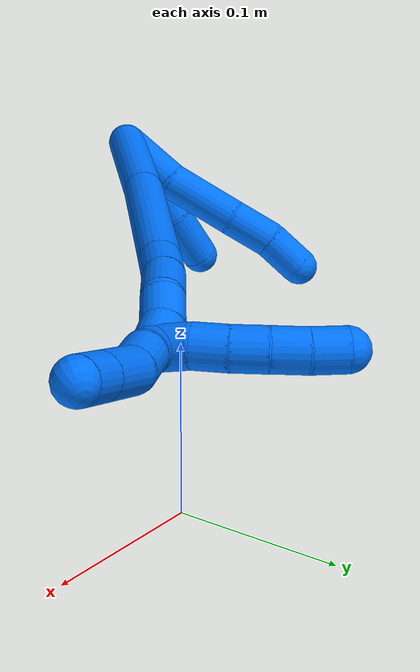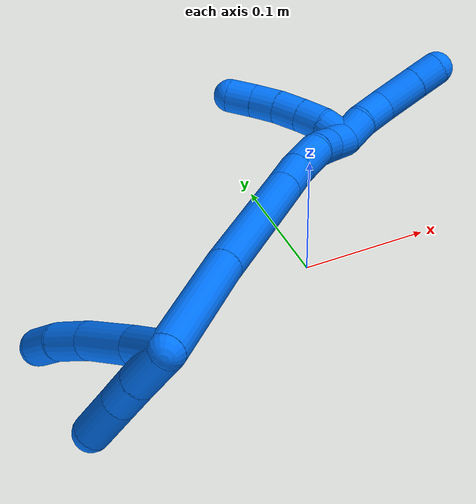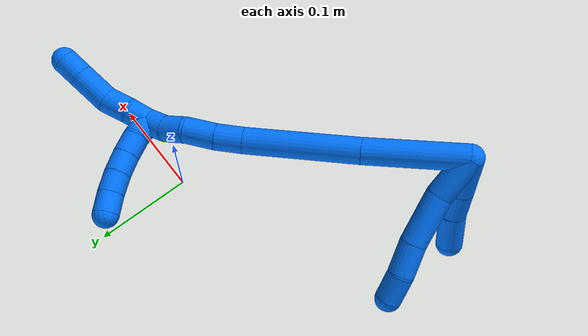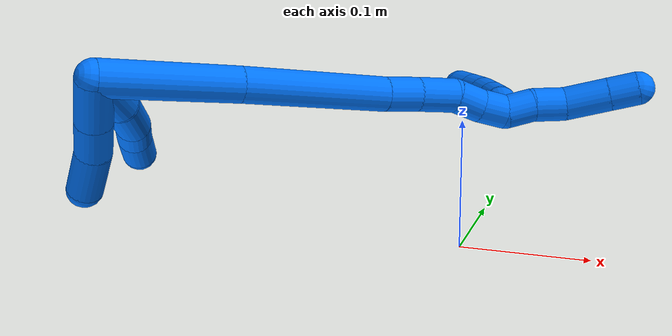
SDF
<sdf version="1.7">
 <world name="default">
  <model name="14">
   <static>0</static>
   <link name="14">
    <collision name="collision-cylinder-e_1_2_8">
     <pose>-0.011126 -0.008446 -0.016253 2.66234 -0.545861 -1.70639</pose>
     <geometry><cylinder><radius>0.0125</radius><length>0.042863</length></cylinder></geometry>
     <surface>
      <friction><ode><mu>1.16</mu><mu2>1.16</mu2><slip1>0</slip1><slip2>0</slip2></ode></friction>
      <contact><ode><kp>1e+06</kp><kd>1</kd><max_vel>0</max_vel><min_depth>0.001</min_depth></ode></contact>
     </surface>
    </collision>
    <visual name="visual-cylinder-e_1_2_8">
     <pose>-0.011126 -0.008446 -0.016253 2.66234 -0.545861 -1.70639</pose>
     <geometry><cylinder><radius>0.0125</radius><length>0.042863</length></cylinder></geometry>
     <material><ambient>0 0.462745 1 1</ambient></material>
    </visual>
    <collision name="collision-cylinder-e_2_8_9">
     <pose>-0.039224 -0.02555 -0.047873 2.62851 -0.766173 -1.98753</pose>
     <geometry><cylinder><radius>0.0125</radius><length>0.048954</length></cylinder></geometry>
     <surface>
      <friction><ode><mu>1.16</mu><mu2>1.16</mu2><slip1>0</slip1><slip2>0</slip2></ode></friction>
      <contact><ode><kp>1e+06</kp><kd>1</kd><max_vel>0</max_vel><min_depth>0.001</min_depth></ode></contact>
     </surface>
    </collision>
    <visual name="visual-cylinder-e_2_8_9">
     <pose>-0.039224 -0.02555 -0.047873 2.62851 -0.766173 -1.98753</pose>
     <geometry><cylinder><radius>0.0125</radius><length>0.048954</length></cylinder></geometry>
     <material><ambient>0 0.462745 1 1</ambient></material>
    </visual>
    <collision name="collision-cylinder-e_3_9_10">
     <pose>-0.067607 -0.040494 -0.071392 2.48479 -0.836755 -1.83383</pose>
     <geometry><cylinder><radius>0.0125</radius><length>0.030736</length></cylinder></geometry>
     <surface>
      <friction><ode><mu>1.16</mu><mu2>1.16</mu2><slip1>0</slip1><slip2>0</slip2></ode></friction>
      <contact><ode><kp>1e+06</kp><kd>1</kd><max_vel>0</max_vel><min_depth>0.001</min_depth></ode></contact>
     </surface>
    </collision>
    <visual name="visual-cylinder-e_3_9_10">
     <pose>-0.067607 -0.040494 -0.071392 2.48479 -0.836755 -1.83383</pose>
     <geometry><cylinder><radius>0.0125</radius><length>0.030736</length></cylinder></geometry>
     <material><ambient>0 0.462745 1 1</ambient></material>
    </visual>
    <collision name="collision-cylinder-e_4_10_6">
     <pose>-0.087176 -0.054229 -0.087685 2.40042 -0.636679 -1.40687</pose>
     <geometry><cylinder><radius>0.0125</radius><length>0.027447</length></cylinder></geometry>
     <surface>
      <friction><ode><mu>1.16</mu><mu2>1.16</mu2><slip1>0</slip1><slip2>0</slip2></ode></friction>
      <contact><ode><kp>1e+06</kp><kd>1</kd><max_vel>0</max_vel><min_depth>0.001</min_depth></ode></contact>
     </surface>
    </collision>
    <visual name="visual-cylinder-e_4_10_6">
     <pose>-0.087176 -0.054229 -0.087685 2.40042 -0.636679 -1.40687</pose>
     <geometry><cylinder><radius>0.0125</radius><length>0.027447</length></cylinder></geometry>
     <material><ambient>0 0.462745 1 1</ambient></material>
    </visual>
    <collision name="collision-cylinder-e_1_2_11">
     <pose>-0.008462 -0.014847 -0.007198 2.02223 -0.473855 -0.735736</pose>
     <geometry><cylinder><radius>0.0125</radius><length>0.037086</length></cylinder></geometry>
     <surface>
      <friction><ode><mu>1.16</mu><mu2>1.16</mu2><slip1>0</slip1><slip2>0</slip2></ode></friction>
      <contact><ode><kp>1e+06</kp><kd>1</kd><max_vel>0</max_vel><min_depth>0.001</min_depth></ode></contact>
     </surface>
    </collision>
    <visual name="visual-cylinder-e_1_2_11">
     <pose>-0.008462 -0.014847 -0.007198 2.02223 -0.473855 -0.735736</pose>
     <geometry><cylinder><radius>0.0125</radius><length>0.037086</length></cylinder></geometry>
     <material><ambient>0 0.462745 1 1</ambient></material>
    </visual>
    <collision name="collision-cylinder-e_2_11_12">
     <pose>-0.022848 -0.040576 -0.019612 2.01778 -0.456402 -0.706779</pose>
     <geometry><cylinder><radius>0.0125</radius><length>0.026887</length></cylinder></geometry>
     <surface>
      <friction><ode><mu>1.16</mu><mu2>1.16</mu2><slip1>0</slip1><slip2>0</slip2></ode></friction>
      <contact><ode><kp>1e+06</kp><kd>1</kd><max_vel>0</max_vel><min_depth>0.001</min_depth></ode></contact>
     </surface>
    </collision>
    <visual name="visual-cylinder-e_2_11_12">
     <pose>-0.022848 -0.040576 -0.019612 2.01778 -0.456402 -0.706779</pose>
     <geometry><cylinder><radius>0.0125</radius><length>0.026887</length></cylinder></geometry>
     <material><ambient>0 0.462745 1 1</ambient></material>
    </visual>
    <collision name="collision-cylinder-e_3_12_5">
     <pose>-0.037614 -0.066501 -0.029304 1.85997 -0.513026 -0.676357</pose>
     <geometry><cylinder><radius>0.0125</radius><length>0.036027</length></cylinder></geometry>
     <surface>
      <friction><ode><mu>1.16</mu><mu2>1.16</mu2><slip1>0</slip1><slip2>0</slip2></ode></friction>
      <contact><ode><kp>1e+06</kp><kd>1</kd><max_vel>0</max_vel><min_depth>0.001</min_depth></ode></contact>
     </surface>
    </collision>
    <visual name="visual-cylinder-e_3_12_5">
     <pose>-0.037614 -0.066501 -0.029304 1.85997 -0.513026 -0.676357</pose>
     <geometry><cylinder><radius>0.0125</radius><length>0.036027</length></cylinder></geometry>
     <material><ambient>0 0.462745 1 1</ambient></material>
    </visual>
    <collision name="collision-cylinder-e_1_2_13">
     <pose>0.00997 0.007494 -0.045595 -2.97869 0.212518 -1.83509</pose>
     <geometry><cylinder><radius>0.0125</radius><length>0.094541</length></cylinder></geometry>
     <surface>
      <friction><ode><mu>1.16</mu><mu2>1.16</mu2><slip1>0</slip1><slip2>0</slip2></ode></friction>
      <contact><ode><kp>1e+06</kp><kd>1</kd><max_vel>0</max_vel><min_depth>0.001</min_depth></ode></contact>
     </surface>
    </collision>
    <visual name="visual-cylinder-e_1_2_13">
     <pose>0.00997 0.007494 -0.045595 -2.97869 0.212518 -1.83509</pose>
     <geometry><cylinder><radius>0.0125</radius><length>0.094541</length></cylinder></geometry>
     <material><ambient>0 0.462745 1 1</ambient></material>
    </visual>
    <collision name="collision-cylinder-e_2_13_14">
     <pose>0.033084 0.0227 -0.142536 -2.99252 0.247921 -2.06173</pose>
     <geometry><cylinder><radius>0.0125</radius><length>0.107118</length></cylinder></geometry>
     <surface>
      <friction><ode><mu>1.16</mu><mu2>1.16</mu2><slip1>0</slip1><slip2>0</slip2></ode></friction>
      <contact><ode><kp>1e+06</kp><kd>1</kd><max_vel>0</max_vel><min_depth>0.001</min_depth></ode></contact>
     </surface>
    </collision>
    <visual name="visual-cylinder-e_2_13_14">
     <pose>0.033084 0.0227 -0.142536 -2.99252 0.247921 -2.06173</pose>
     <geometry><cylinder><radius>0.0125</radius><length>0.107118</length></cylinder></geometry>
     <material><ambient>0 0.462745 1 1</ambient></material>
    </visual>
    <collision name="collision-cylinder-e_3_14_15">
     <pose>0.049653 0.033054 -0.206214 -2.93051 0.265292 -1.79951</pose>
     <geometry><cylinder><radius>0.0125</radius><length>0.026139</length></cylinder></geometry>
     <surface>
      <friction><ode><mu>1.16</mu><mu2>1.16</mu2><slip1>0</slip1><slip2>0</slip2></ode></friction>
      <contact><ode><kp>1e+06</kp><kd>1</kd><max_vel>0</max_vel><min_depth>0.001</min_depth></ode></contact>
     </surface>
    </collision>
    <visual name="visual-cylinder-e_3_14_15">
     <pose>0.049653 0.033054 -0.206214 -2.93051 0.265292 -1.79951</pose>
     <geometry><cylinder><radius>0.0125</radius><length>0.026139</length></cylinder></geometry>
     <material><ambient>0 0.462745 1 1</ambient></material>
    </visual>
    <collision name="collision-cylinder-e_4_15_16">
     <pose>0.058382 0.038506 -0.232121 -2.9375 0.365322 -2.12923</pose>
     <geometry><cylinder><radius>0.0125</radius><length>0.029685</length></cylinder></geometry>
     <surface>
      <friction><ode><mu>1.16</mu><mu2>1.16</mu2><slip1>0</slip1><slip2>0</slip2></ode></friction>
      <contact><ode><kp>1e+06</kp><kd>1</kd><max_vel>0</max_vel><min_depth>0.001</min_depth></ode></contact>
     </surface>
    </collision>
    <visual name="visual-cylinder-e_4_15_16">
     <pose>0.058382 0.038506 -0.232121 -2.9375 0.365322 -2.12923</pose>
     <geometry><cylinder><radius>0.0125</radius><length>0.029685</length></cylinder></geometry>
     <material><ambient>0 0.462745 1 1</ambient></material>
    </visual>
    <collision name="collision-cylinder-e_5_16_17">
     <pose>0.067413 0.0399 -0.256105 3.00639 0.341065 2.3924</pose>
     <geometry><cylinder><radius>0.0125</radius><length>0.022293</length></cylinder></geometry>
     <surface>
      <friction><ode><mu>1.16</mu><mu2>1.16</mu2><slip1>0</slip1><slip2>0</slip2></ode></friction>
      <contact><ode><kp>1e+06</kp><kd>1</kd><max_vel>0</max_vel><min_depth>0.001</min_depth></ode></contact>
     </surface>
    </collision>
    <visual name="visual-cylinder-e_5_16_17">
     <pose>0.067413 0.0399 -0.256105 3.00639 0.341065 2.3924</pose>
     <geometry><cylinder><radius>0.0125</radius><length>0.022293</length></cylinder></geometry>
     <material><ambient>0 0.462745 1 1</ambient></material>
    </visual>
    <collision name="collision-cylinder-e_6_17_1">
     <pose>0.076692 0.038526 -0.274966 -3.13669 0.581069 -3.1252</pose>
     <geometry><cylinder><radius>0.0125</radius><length>0.020224</length></cylinder></geometry>
     <surface>
      <friction><ode><mu>1.16</mu><mu2>1.16</mu2><slip1>0</slip1><slip2>0</slip2></ode></friction>
      <contact><ode><kp>1e+06</kp><kd>1</kd><max_vel>0</max_vel><min_depth>0.001</min_depth></ode></contact>
     </surface>
    </collision>
    <visual name="visual-cylinder-e_6_17_1">
     <pose>0.076692 0.038526 -0.274966 -3.13669 0.581069 -3.1252</pose>
     <geometry><cylinder><radius>0.0125</radius><length>0.020224</length></cylinder></geometry>
     <material><ambient>0 0.462745 1 1</ambient></material>
    </visual>
    <collision name="collision-cylinder-e_1_1_18">
     <pose>0.087524 0.0436 -0.291078 -2.56023 0.522728 -1.45912</pose>
     <geometry><cylinder><radius>0.0125</radius><length>0.021154</length></cylinder></geometry>
     <surface>
      <friction><ode><mu>1.16</mu><mu2>1.16</mu2><slip1>0</slip1><slip2>0</slip2></ode></friction>
      <contact><ode><kp>1e+06</kp><kd>1</kd><max_vel>0</max_vel><min_depth>0.001</min_depth></ode></contact>
     </surface>
    </collision>
    <visual name="visual-cylinder-e_1_1_18">
     <pose>0.087524 0.0436 -0.291078 -2.56023 0.522728 -1.45912</pose>
     <geometry><cylinder><radius>0.0125</radius><length>0.021154</length></cylinder></geometry>
     <material><ambient>0 0.462745 1 1</ambient></material>
    </visual>
    <collision name="collision-cylinder-e_2_18_19">
     <pose>0.099328 0.051899 -0.308311 -2.81278 0.572768 -2.11549</pose>
     <geometry><cylinder><radius>0.0125</radius><length>0.024074</length></cylinder></geometry>
     <surface>
      <friction><ode><mu>1.16</mu><mu2>1.16</mu2><slip1>0</slip1><slip2>0</slip2></ode></friction>
      <contact><ode><kp>1e+06</kp><kd>1</kd><max_vel>0</max_vel><min_depth>0.001</min_depth></ode></contact>
     </surface>
    </collision>
    <visual name="visual-cylinder-e_2_18_19">
     <pose>0.099328 0.051899 -0.308311 -2.81278 0.572768 -2.11549</pose>
     <geometry><cylinder><radius>0.0125</radius><length>0.024074</length></cylinder></geometry>
     <material><ambient>0 0.462745 1 1</ambient></material>
    </visual>
    <collision name="collision-cylinder-e_3_19_20">
     <pose>0.117215 0.062802 -0.327404 -2.46551 0.749776 -1.68333</pose>
     <geometry><cylinder><radius>0.0125</radius><length>0.033351</length></cylinder></geometry>
     <surface>
      <friction><ode><mu>1.16</mu><mu2>1.16</mu2><slip1>0</slip1><slip2>0</slip2></ode></friction>
      <contact><ode><kp>1e+06</kp><kd>1</kd><max_vel>0</max_vel><min_depth>0.001</min_depth></ode></contact>
     </surface>
    </collision>
    <visual name="visual-cylinder-e_3_19_20">
     <pose>0.117215 0.062802 -0.327404 -2.46551 0.749776 -1.68333</pose>
     <geometry><cylinder><radius>0.0125</radius><length>0.033351</length></cylinder></geometry>
     <material><ambient>0 0.462745 1 1</ambient></material>
    </visual>
    <collision name="collision-cylinder-e_4_20_4">
     <pose>0.135924 0.075327 -0.342995 -2.46374 0.755711 -1.68915</pose>
     <geometry><cylinder><radius>0.0125</radius><length>0.021421</length></cylinder></geometry>
     <surface>
      <friction><ode><mu>1.16</mu><mu2>1.16</mu2><slip1>0</slip1><slip2>0</slip2></ode></friction>
      <contact><ode><kp>1e+06</kp><kd>1</kd><max_vel>0</max_vel><min_depth>0.001</min_depth></ode></contact>
     </surface>
    </collision>
    <visual name="visual-cylinder-e_4_20_4">
     <pose>0.135924 0.075327 -0.342995 -2.46374 0.755711 -1.68915</pose>
     <geometry><cylinder><radius>0.0125</radius><length>0.021421</length></cylinder></geometry>
     <material><ambient>0 0.462745 1 1</ambient></material>
    </visual>
    <collision name="collision-cylinder-e_1_1_21">
     <pose>0.074141 0.041336 -0.288585 -2.64956 -0.944406 2.22772</pose>
     <geometry><cylinder><radius>0.0125</radius><length>0.02</length></cylinder></geometry>
     <surface>
      <friction><ode><mu>1.16</mu><mu2>1.16</mu2><slip1>0</slip1><slip2>0</slip2></ode></friction>
      <contact><ode><kp>1e+06</kp><kd>1</kd><max_vel>0</max_vel><min_depth>0.001</min_depth></ode></contact>
     </surface>
    </collision>
    <visual name="visual-cylinder-e_1_1_21">
     <pose>0.074141 0.041336 -0.288585 -2.64956 -0.944406 2.22772</pose>
     <geometry><cylinder><radius>0.0125</radius><length>0.02</length></cylinder></geometry>
     <material><ambient>0 0.462745 1 1</ambient></material>
    </visual>
    <collision name="collision-cylinder-e_2_21_22">
     <pose>0.057388 0.044843 -0.298711 -2.99396 -1.04562 2.88635</pose>
     <geometry><cylinder><radius>0.0125</radius><length>0.02</length></cylinder></geometry>
     <surface>
      <friction><ode><mu>1.16</mu><mu2>1.16</mu2><slip1>0</slip1><slip2>0</slip2></ode></friction>
      <contact><ode><kp>1e+06</kp><kd>1</kd><max_vel>0</max_vel><min_depth>0.001</min_depth></ode></contact>
     </surface>
    </collision>
    <visual name="visual-cylinder-e_2_21_22">
     <pose>0.057388 0.044843 -0.298711 -2.99396 -1.04562 2.88635</pose>
     <geometry><cylinder><radius>0.0125</radius><length>0.02</length></cylinder></geometry>
     <material><ambient>0 0.462745 1 1</ambient></material>
    </visual>
    <collision name="collision-cylinder-e_3_22_23">
     <pose>0.03969 0.046263 -0.307879 -2.98094 -1.13032 2.88906</pose>
     <geometry><cylinder><radius>0.0125</radius><length>0.02</length></cylinder></geometry>
     <surface>
      <friction><ode><mu>1.16</mu><mu2>1.16</mu2><slip1>0</slip1><slip2>0</slip2></ode></friction>
      <contact><ode><kp>1e+06</kp><kd>1</kd><max_vel>0</max_vel><min_depth>0.001</min_depth></ode></contact>
     </surface>
    </collision>
    <visual name="visual-cylinder-e_3_22_23">
     <pose>0.03969 0.046263 -0.307879 -2.98094 -1.13032 2.88906</pose>
     <geometry><cylinder><radius>0.0125</radius><length>0.02</length></cylinder></geometry>
     <material><ambient>0 0.462745 1 1</ambient></material>
    </visual>
    <collision name="collision-cylinder-e_4_23_24">
     <pose>0.021273 0.047006 -0.315578 -3.12411 -1.21427 3.11643</pose>
     <geometry><cylinder><radius>0.0125</radius><length>0.02</length></cylinder></geometry>
     <surface>
      <friction><ode><mu>1.16</mu><mu2>1.16</mu2><slip1>0</slip1><slip2>0</slip2></ode></friction>
      <contact><ode><kp>1e+06</kp><kd>1</kd><max_vel>0</max_vel><min_depth>0.001</min_depth></ode></contact>
     </surface>
    </collision>
    <visual name="visual-cylinder-e_4_23_24">
     <pose>0.021273 0.047006 -0.315578 -3.12411 -1.21427 3.11643</pose>
     <geometry><cylinder><radius>0.0125</radius><length>0.02</length></cylinder></geometry>
     <material><ambient>0 0.462745 1 1</ambient></material>
    </visual>
    <collision name="collision-cylinder-e_5_24_3">
     <pose>0.002229 0.047137 -0.321603 -3.11382 -1.31433 3.1056</pose>
     <geometry><cylinder><radius>0.0125</radius><length>0.02</length></cylinder></geometry>
     <surface>
      <friction><ode><mu>1.16</mu><mu2>1.16</mu2><slip1>0</slip1><slip2>0</slip2></ode></friction>
      <contact><ode><kp>1e+06</kp><kd>1</kd><max_vel>0</max_vel><min_depth>0.001</min_depth></ode></contact>
     </surface>
    </collision>
    <visual name="visual-cylinder-e_5_24_3">
     <pose>0.002229 0.047137 -0.321603 -3.11382 -1.31433 3.1056</pose>
     <geometry><cylinder><radius>0.0125</radius><length>0.02</length></cylinder></geometry>
     <material><ambient>0 0.462745 1 1</ambient></material>
    </visual>
    <collision name="collision-sphere-3">
     <pose>-0.007444 0.047208 -0.324139 0 -0 0</pose>
     <geometry><sphere><radius>0.0125</radius></sphere></geometry>
     <surface>
      <friction><ode><mu>1.16</mu><mu2>1.16</mu2><slip1>0</slip1><slip2>0</slip2></ode></friction>
      <contact><ode><kp>1e+06</kp><kd>1</kd><max_vel>0</max_vel><min_depth>0.001</min_depth></ode></contact>
     </surface>
    </collision>
    <visual name="visual-sphere-3">
     <pose>-0.007444 0.047208 -0.324139 0 -0 0</pose>
     <geometry><sphere><radius>0.0125</radius></sphere></geometry>
     <material><ambient>0 0.462745 1 1</ambient></material>
    </visual>
    <collision name="collision-sphere-24">
     <pose>0.011902 0.047067 -0.319067 0 -0 0</pose>
     <geometry><sphere><radius>0.0125</radius></sphere></geometry>
     <surface>
      <friction><ode><mu>1.16</mu><mu2>1.16</mu2><slip1>0</slip1><slip2>0</slip2></ode></friction>
      <contact><ode><kp>1e+06</kp><kd>1</kd><max_vel>0</max_vel><min_depth>0.001</min_depth></ode></contact>
     </surface>
    </collision>
    <visual name="visual-sphere-24">
     <pose>0.011902 0.047067 -0.319067 0 -0 0</pose>
     <geometry><sphere><radius>0.0125</radius></sphere></geometry>
     <material><ambient>0 0.462745 1 1</ambient></material>
    </visual>
    <collision name="collision-sphere-23">
     <pose>0.030644 0.046945 -0.312088 0 -0 0</pose>
     <geometry><sphere><radius>0.0125</radius></sphere></geometry>
     <surface>
      <friction><ode><mu>1.16</mu><mu2>1.16</mu2><slip1>0</slip1><slip2>0</slip2></ode></friction>
      <contact><ode><kp>1e+06</kp><kd>1</kd><max_vel>0</max_vel><min_depth>0.001</min_depth></ode></contact>
     </surface>
    </collision>
    <visual name="visual-sphere-23">
     <pose>0.030644 0.046945 -0.312088 0 -0 0</pose>
     <geometry><sphere><radius>0.0125</radius></sphere></geometry>
     <material><ambient>0 0.462745 1 1</ambient></material>
    </visual>
    <collision name="collision-sphere-22">
     <pose>0.048735 0.045581 -0.30367 0 -0 0</pose>
     <geometry><sphere><radius>0.0125</radius></sphere></geometry>
     <surface>
      <friction><ode><mu>1.16</mu><mu2>1.16</mu2><slip1>0</slip1><slip2>0</slip2></ode></friction>
      <contact><ode><kp>1e+06</kp><kd>1</kd><max_vel>0</max_vel><min_depth>0.001</min_depth></ode></contact>
     </surface>
    </collision>
    <visual name="visual-sphere-22">
     <pose>0.048735 0.045581 -0.30367 0 -0 0</pose>
     <geometry><sphere><radius>0.0125</radius></sphere></geometry>
     <material><ambient>0 0.462745 1 1</ambient></material>
    </visual>
    <collision name="collision-sphere-21">
     <pose>0.06604 0.044106 -0.293752 0 -0 0</pose>
     <geometry><sphere><radius>0.0125</radius></sphere></geometry>
     <surface>
      <friction><ode><mu>1.16</mu><mu2>1.16</mu2><slip1>0</slip1><slip2>0</slip2></ode></friction>
      <contact><ode><kp>1e+06</kp><kd>1</kd><max_vel>0</max_vel><min_depth>0.001</min_depth></ode></contact>
     </surface>
    </collision>
    <visual name="visual-sphere-21">
     <pose>0.06604 0.044106 -0.293752 0 -0 0</pose>
     <geometry><sphere><radius>0.0125</radius></sphere></geometry>
     <material><ambient>0 0.462745 1 1</ambient></material>
    </visual>
    <collision name="collision-sphere-4">
     <pose>0.14327 0.080215 -0.349067 0 -0 0</pose>
     <geometry><sphere><radius>0.0125</radius></sphere></geometry>
     <surface>
      <friction><ode><mu>1.16</mu><mu2>1.16</mu2><slip1>0</slip1><slip2>0</slip2></ode></friction>
      <contact><ode><kp>1e+06</kp><kd>1</kd><max_vel>0</max_vel><min_depth>0.001</min_depth></ode></contact>
     </surface>
    </collision>
    <visual name="visual-sphere-4">
     <pose>0.14327 0.080215 -0.349067 0 -0 0</pose>
     <geometry><sphere><radius>0.0125</radius></sphere></geometry>
     <material><ambient>0 0.462745 1 1</ambient></material>
    </visual>
    <collision name="collision-sphere-20">
     <pose>0.128579 0.070439 -0.336924 0 -0 0</pose>
     <geometry><sphere><radius>0.0125</radius></sphere></geometry>
     <surface>
      <friction><ode><mu>1.16</mu><mu2>1.16</mu2><slip1>0</slip1><slip2>0</slip2></ode></friction>
      <contact><ode><kp>1e+06</kp><kd>1</kd><max_vel>0</max_vel><min_depth>0.001</min_depth></ode></contact>
     </surface>
    </collision>
    <visual name="visual-sphere-20">
     <pose>0.128579 0.070439 -0.336924 0 -0 0</pose>
     <geometry><sphere><radius>0.0125</radius></sphere></geometry>
     <material><ambient>0 0.462745 1 1</ambient></material>
    </visual>
    <collision name="collision-sphere-11">
     <pose>-0.016923 -0.029694 -0.014396 0 -0 0</pose>
     <geometry><sphere><radius>0.0125</radius></sphere></geometry>
     <surface>
      <friction><ode><mu>1.16</mu><mu2>1.16</mu2><slip1>0</slip1><slip2>0</slip2></ode></friction>
      <contact><ode><kp>1e+06</kp><kd>1</kd><max_vel>0</max_vel><min_depth>0.001</min_depth></ode></contact>
     </surface>
    </collision>
    <visual name="visual-sphere-11">
     <pose>-0.016923 -0.029694 -0.014396 0 -0 0</pose>
     <geometry><sphere><radius>0.0125</radius></sphere></geometry>
     <material><ambient>0 0.462745 1 1</ambient></material>
    </visual>
    <collision name="collision-sphere-6">
     <pose>-0.095335 -0.06168 -0.095825 0 -0 0</pose>
     <geometry><sphere><radius>0.0125</radius></sphere></geometry>
     <surface>
      <friction><ode><mu>1.16</mu><mu2>1.16</mu2><slip1>0</slip1><slip2>0</slip2></ode></friction>
      <contact><ode><kp>1e+06</kp><kd>1</kd><max_vel>0</max_vel><min_depth>0.001</min_depth></ode></contact>
     </surface>
    </collision>
    <visual name="visual-sphere-6">
     <pose>-0.095335 -0.06168 -0.095825 0 -0 0</pose>
     <geometry><sphere><radius>0.0125</radius></sphere></geometry>
     <material><ambient>0 0.462745 1 1</ambient></material>
    </visual>
    <collision name="collision-sphere-10">
     <pose>-0.079017 -0.046779 -0.079545 0 -0 0</pose>
     <geometry><sphere><radius>0.0125</radius></sphere></geometry>
     <surface>
      <friction><ode><mu>1.16</mu><mu2>1.16</mu2><slip1>0</slip1><slip2>0</slip2></ode></friction>
      <contact><ode><kp>1e+06</kp><kd>1</kd><max_vel>0</max_vel><min_depth>0.001</min_depth></ode></contact>
     </surface>
    </collision>
    <visual name="visual-sphere-10">
     <pose>-0.079017 -0.046779 -0.079545 0 -0 0</pose>
     <geometry><sphere><radius>0.0125</radius></sphere></geometry>
     <material><ambient>0 0.462745 1 1</ambient></material>
    </visual>
    <collision name="collision-sphere-9">
     <pose>-0.056196 -0.034208 -0.063239 0 -0 0</pose>
     <geometry><sphere><radius>0.0125</radius></sphere></geometry>
     <surface>
      <friction><ode><mu>1.16</mu><mu2>1.16</mu2><slip1>0</slip1><slip2>0</slip2></ode></friction>
      <contact><ode><kp>1e+06</kp><kd>1</kd><max_vel>0</max_vel><min_depth>0.001</min_depth></ode></contact>
     </surface>
    </collision>
    <visual name="visual-sphere-9">
     <pose>-0.056196 -0.034208 -0.063239 0 -0 0</pose>
     <geometry><sphere><radius>0.0125</radius></sphere></geometry>
     <material><ambient>0 0.462745 1 1</ambient></material>
    </visual>
    <collision name="collision-sphere-2">
     <geometry><sphere><radius>0.0125</radius></sphere></geometry>
     <surface>
      <friction><ode><mu>1.16</mu><mu2>1.16</mu2><slip1>0</slip1><slip2>0</slip2></ode></friction>
      <contact><ode><kp>1e+06</kp><kd>1</kd><max_vel>0</max_vel><min_depth>0.001</min_depth></ode></contact>
     </surface>
    </collision>
    <visual name="visual-sphere-2">
     <geometry><sphere><radius>0.0125</radius></sphere></geometry>
     <material><ambient>0 0.462745 1 1</ambient></material>
    </visual>
    <collision name="collision-sphere-19">
     <pose>0.105851 0.055166 -0.317885 0 -0 0</pose>
     <geometry><sphere><radius>0.0125</radius></sphere></geometry>
     <surface>
      <friction><ode><mu>1.16</mu><mu2>1.16</mu2><slip1>0</slip1><slip2>0</slip2></ode></friction>
      <contact><ode><kp>1e+06</kp><kd>1</kd><max_vel>0</max_vel><min_depth>0.001</min_depth></ode></contact>
     </surface>
    </collision>
    <visual name="visual-sphere-19">
     <pose>0.105851 0.055166 -0.317885 0 -0 0</pose>
     <geometry><sphere><radius>0.0125</radius></sphere></geometry>
     <material><ambient>0 0.462745 1 1</ambient></material>
    </visual>
    <collision name="collision-sphere-8">
     <pose>-0.022252 -0.016892 -0.032507 0 -0 0</pose>
     <geometry><sphere><radius>0.0125</radius></sphere></geometry>
     <surface>
      <friction><ode><mu>1.16</mu><mu2>1.16</mu2><slip1>0</slip1><slip2>0</slip2></ode></friction>
      <contact><ode><kp>1e+06</kp><kd>1</kd><max_vel>0</max_vel><min_depth>0.001</min_depth></ode></contact>
     </surface>
    </collision>
    <visual name="visual-sphere-8">
     <pose>-0.022252 -0.016892 -0.032507 0 -0 0</pose>
     <geometry><sphere><radius>0.0125</radius></sphere></geometry>
     <material><ambient>0 0.462745 1 1</ambient></material>
    </visual>
    <collision name="collision-sphere-12">
     <pose>-0.028773 -0.051458 -0.024829 0 -0 0</pose>
     <geometry><sphere><radius>0.0125</radius></sphere></geometry>
     <surface>
      <friction><ode><mu>1.16</mu><mu2>1.16</mu2><slip1>0</slip1><slip2>0</slip2></ode></friction>
      <contact><ode><kp>1e+06</kp><kd>1</kd><max_vel>0</max_vel><min_depth>0.001</min_depth></ode></contact>
     </surface>
    </collision>
    <visual name="visual-sphere-12">
     <pose>-0.028773 -0.051458 -0.024829 0 -0 0</pose>
     <geometry><sphere><radius>0.0125</radius></sphere></geometry>
     <material><ambient>0 0.462745 1 1</ambient></material>
    </visual>
    <collision name="collision-sphere-5">
     <pose>-0.046455 -0.081543 -0.03378 0 -0 0</pose>
     <geometry><sphere><radius>0.0125</radius></sphere></geometry>
     <surface>
      <friction><ode><mu>1.16</mu><mu2>1.16</mu2><slip1>0</slip1><slip2>0</slip2></ode></friction>
      <contact><ode><kp>1e+06</kp><kd>1</kd><max_vel>0</max_vel><min_depth>0.001</min_depth></ode></contact>
     </surface>
    </collision>
    <visual name="visual-sphere-5">
     <pose>-0.046455 -0.081543 -0.03378 0 -0 0</pose>
     <geometry><sphere><radius>0.0125</radius></sphere></geometry>
     <material><ambient>0 0.462745 1 1</ambient></material>
    </visual>
    <collision name="collision-sphere-13">
     <pose>0.019941 0.014988 -0.091191 0 -0 0</pose>
     <geometry><sphere><radius>0.0125</radius></sphere></geometry>
     <surface>
      <friction><ode><mu>1.16</mu><mu2>1.16</mu2><slip1>0</slip1><slip2>0</slip2></ode></friction>
      <contact><ode><kp>1e+06</kp><kd>1</kd><max_vel>0</max_vel><min_depth>0.001</min_depth></ode></contact>
     </surface>
    </collision>
    <visual name="visual-sphere-13">
     <pose>0.019941 0.014988 -0.091191 0 -0 0</pose>
     <geometry><sphere><radius>0.0125</radius></sphere></geometry>
     <material><ambient>0 0.462745 1 1</ambient></material>
    </visual>
    <collision name="collision-sphere-14">
     <pose>0.046226 0.030411 -0.193881 0 -0 0</pose>
     <geometry><sphere><radius>0.0125</radius></sphere></geometry>
     <surface>
      <friction><ode><mu>1.16</mu><mu2>1.16</mu2><slip1>0</slip1><slip2>0</slip2></ode></friction>
      <contact><ode><kp>1e+06</kp><kd>1</kd><max_vel>0</max_vel><min_depth>0.001</min_depth></ode></contact>
     </surface>
    </collision>
    <visual name="visual-sphere-14">
     <pose>0.046226 0.030411 -0.193881 0 -0 0</pose>
     <geometry><sphere><radius>0.0125</radius></sphere></geometry>
     <material><ambient>0 0.462745 1 1</ambient></material>
    </visual>
    <collision name="collision-sphere-15">
     <pose>0.05308 0.035697 -0.218546 0 -0 0</pose>
     <geometry><sphere><radius>0.0125</radius></sphere></geometry>
     <surface>
      <friction><ode><mu>1.16</mu><mu2>1.16</mu2><slip1>0</slip1><slip2>0</slip2></ode></friction>
      <contact><ode><kp>1e+06</kp><kd>1</kd><max_vel>0</max_vel><min_depth>0.001</min_depth></ode></contact>
     </surface>
    </collision>
    <visual name="visual-sphere-15">
     <pose>0.05308 0.035697 -0.218546 0 -0 0</pose>
     <geometry><sphere><radius>0.0125</radius></sphere></geometry>
     <material><ambient>0 0.462745 1 1</ambient></material>
    </visual>
    <collision name="collision-sphere-16">
     <pose>0.063685 0.041316 -0.245697 0 -0 0</pose>
     <geometry><sphere><radius>0.0125</radius></sphere></geometry>
     <surface>
      <friction><ode><mu>1.16</mu><mu2>1.16</mu2><slip1>0</slip1><slip2>0</slip2></ode></friction>
      <contact><ode><kp>1e+06</kp><kd>1</kd><max_vel>0</max_vel><min_depth>0.001</min_depth></ode></contact>
     </surface>
    </collision>
    <visual name="visual-sphere-16">
     <pose>0.063685 0.041316 -0.245697 0 -0 0</pose>
     <geometry><sphere><radius>0.0125</radius></sphere></geometry>
     <material><ambient>0 0.462745 1 1</ambient></material>
    </visual>
    <collision name="collision-sphere-17">
     <pose>0.071142 0.038484 -0.266514 0 -0 0</pose>
     <geometry><sphere><radius>0.0125</radius></sphere></geometry>
     <surface>
      <friction><ode><mu>1.16</mu><mu2>1.16</mu2><slip1>0</slip1><slip2>0</slip2></ode></friction>
      <contact><ode><kp>1e+06</kp><kd>1</kd><max_vel>0</max_vel><min_depth>0.001</min_depth></ode></contact>
     </surface>
    </collision>
    <visual name="visual-sphere-17">
     <pose>0.071142 0.038484 -0.266514 0 -0 0</pose>
     <geometry><sphere><radius>0.0125</radius></sphere></geometry>
     <material><ambient>0 0.462745 1 1</ambient></material>
    </visual>
    <collision name="collision-sphere-1">
     <pose>0.082243 0.038567 -0.283419 0 -0 0</pose>
     <geometry><sphere><radius>0.0125</radius></sphere></geometry>
     <surface>
      <friction><ode><mu>1.16</mu><mu2>1.16</mu2><slip1>0</slip1><slip2>0</slip2></ode></friction>
      <contact><ode><kp>1e+06</kp><kd>1</kd><max_vel>0</max_vel><min_depth>0.001</min_depth></ode></contact>
     </surface>
    </collision>
    <visual name="visual-sphere-1">
     <pose>0.082243 0.038567 -0.283419 0 -0 0</pose>
     <geometry><sphere><radius>0.0125</radius></sphere></geometry>
     <material><ambient>0 0.462745 1 1</ambient></material>
    </visual>
    <collision name="collision-sphere-18">
     <pose>0.092804 0.048633 -0.298737 0 -0 0</pose>
     <geometry><sphere><radius>0.0125</radius></sphere></geometry>
     <surface>
      <friction><ode><mu>1.16</mu><mu2>1.16</mu2><slip1>0</slip1><slip2>0</slip2></ode></friction>
      <contact><ode><kp>1e+06</kp><kd>1</kd><max_vel>0</max_vel><min_depth>0.001</min_depth></ode></contact>
     </surface>
    </collision>
    <visual name="visual-sphere-18">
     <pose>0.092804 0.048633 -0.298737 0 -0 0</pose>
     <geometry><sphere><radius>0.0125</radius></sphere></geometry>
     <material><ambient>0 0.462745 1 1</ambient></material>
    </visual>
    <inertial>
     <pose>0.021838 0.011792 -0.153486 0 -0 0</pose>
     <mass>0.75</mass>
     <inertia>
      <ixx>-0.000277</ixx>
      <ixy>0</ixy>
      <ixz>0</ixz>
      <iyy>-9.7e-05</iyy>
      <iyz>0</iyz>
      <izz>-7.3e-05</izz>
     </inertia>
    </inertial>
   </link>
   <pose>-0.18834 -0.189467 0.155111 1.28523 0.056958 -0.568115</pose>
  </model>
 </world>
</sdf>
